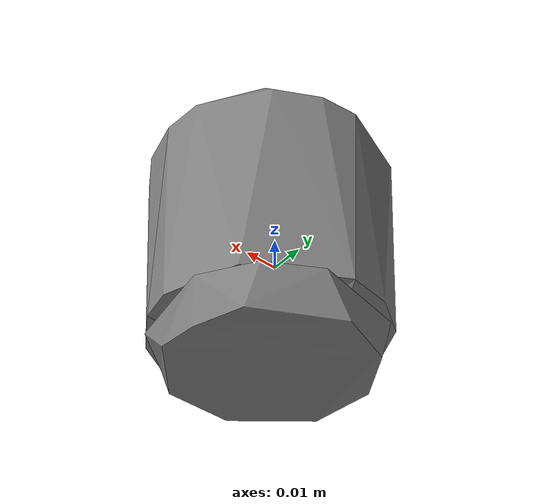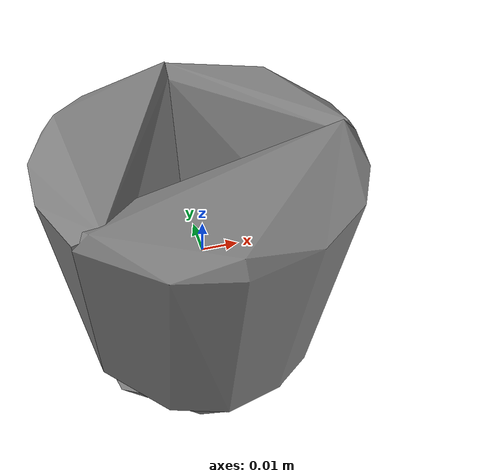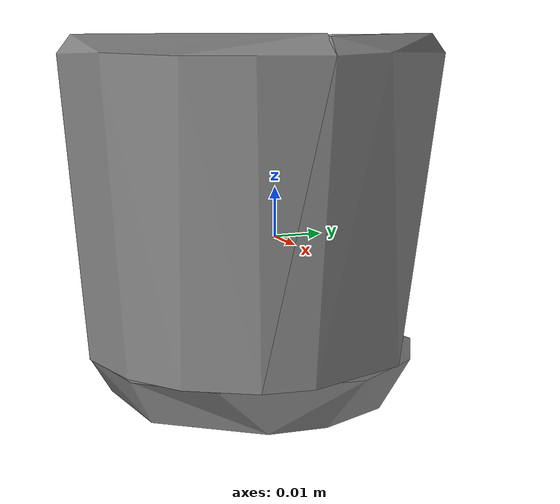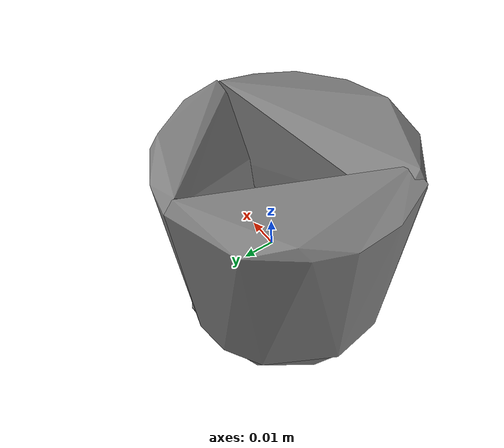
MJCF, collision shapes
<mujoco model="e_cups">
  <compiler angle="radian" />

  <asset>
    <mesh name="e_cups_visual_mesh" file="e_cups/textured.obj" />
    <mesh name="e_cups_collision_mesh_0" file="e_cups/textured_coacd_0.stl" />
    <mesh name="e_cups_collision_mesh_1" file="e_cups/textured_coacd_1.stl" />
    <mesh name="e_cups_collision_mesh_2" file="e_cups/textured_coacd_2.stl" />
    <mesh name="e_cups_collision_mesh_3" file="e_cups/textured_coacd_3.stl" />
    <texture name="e_cups_texture" type="2d" file="e_cups/texture_map.png" />
    <material name="e_cups_material" texture="e_cups_texture" />
  </asset>

  <worldbody>
    <body name="e_cups" pos="0 0 0" euler="0 0 0">
      <freejoint name="e_cups_joint" />
      <geom name="e_cups_visual_geom" type="mesh" mesh="e_cups_visual_mesh" material="e_cups_material" pos="0.019152019112154205 0.07367966947628142 -0.030395630482407465" euler="0 0 0" contype="0" conaffinity="0" group="0" />
      <geom name="e_cups_collision_geom_0" type="mesh" mesh="e_cups_collision_mesh_0" pos="0.019152019112154205 0.07367966947628142 -0.030395630482407465" euler="0 0 0" contype="1" conaffinity="1" group="3" />
      <geom name="e_cups_collision_geom_1" type="mesh" mesh="e_cups_collision_mesh_1" pos="0.019152019112154205 0.07367966947628142 -0.030395630482407465" euler="0 0 0" contype="1" conaffinity="1" group="3" />
      <geom name="e_cups_collision_geom_2" type="mesh" mesh="e_cups_collision_mesh_2" pos="0.019152019112154205 0.07367966947628142 -0.030395630482407465" euler="0 0 0" contype="1" conaffinity="1" group="3" />
      <geom name="e_cups_collision_geom_3" type="mesh" mesh="e_cups_collision_mesh_3" pos="0.019152019112154205 0.07367966947628142 -0.030395630482407465" euler="0 0 0" contype="1" conaffinity="1" group="3" />
      <inertial pos="0 0 0" euler="0 0 0" mass="0.021" diaginertia="0.001 0.001 0.001" />
    </body>
  </worldbody>
</mujoco>
